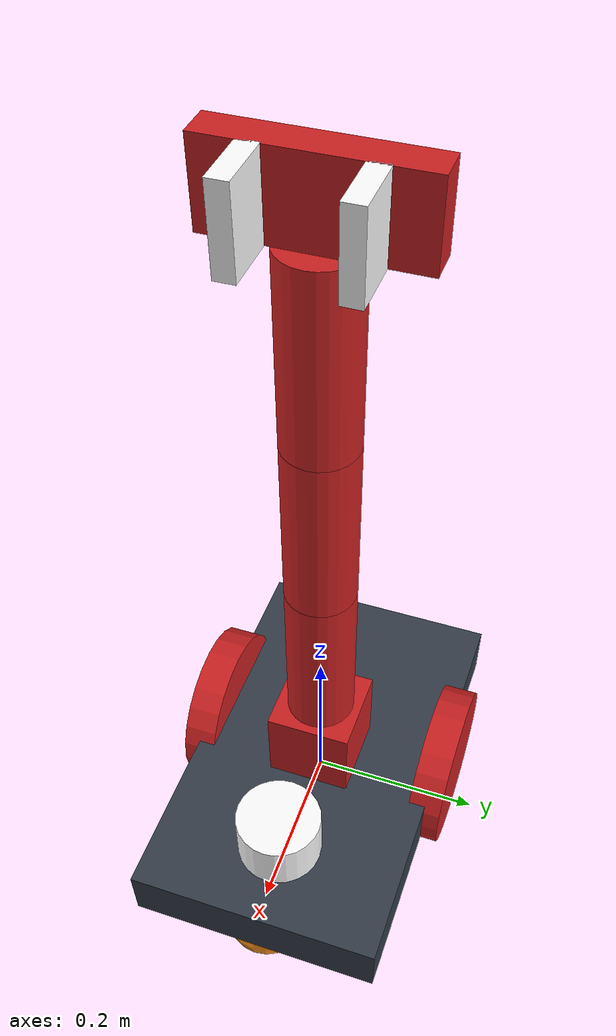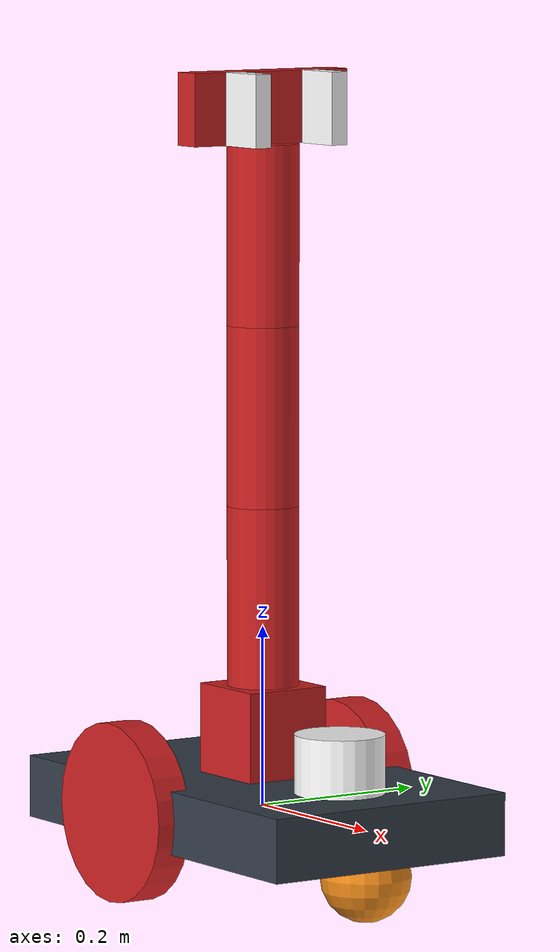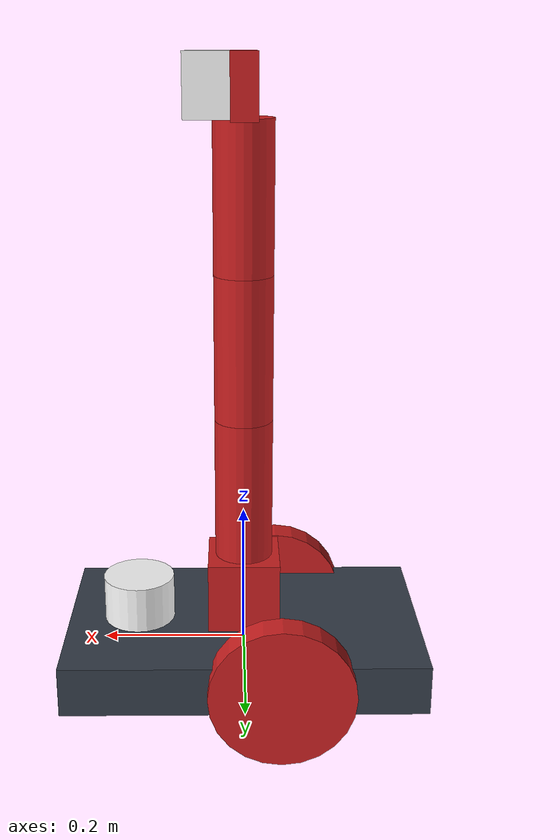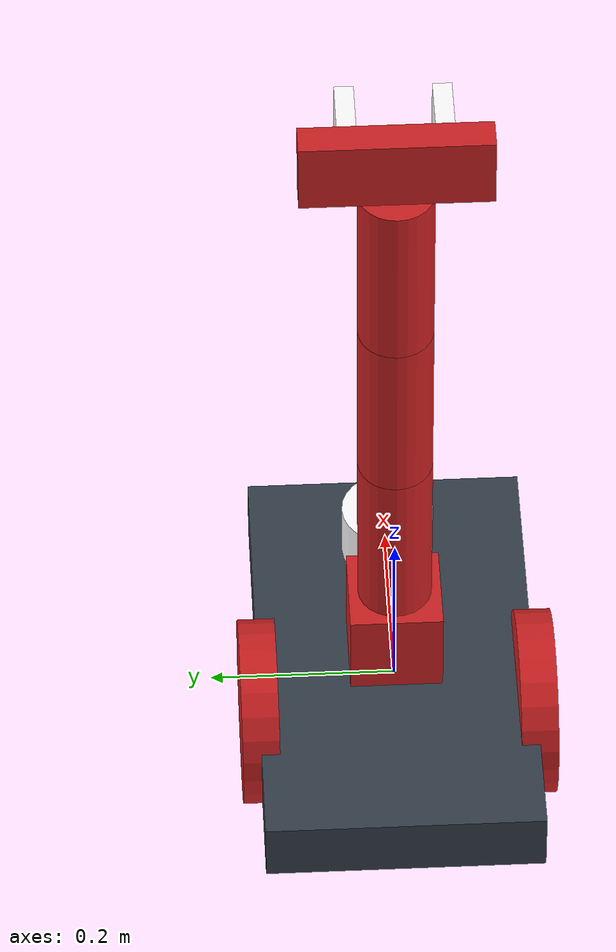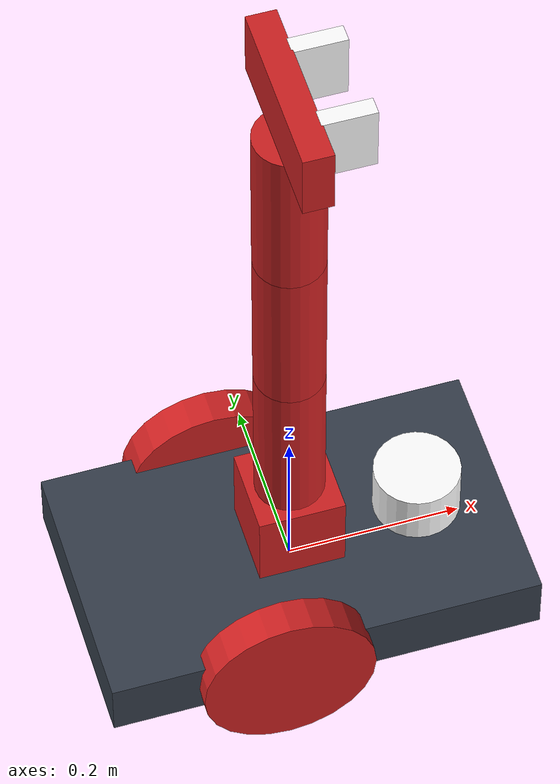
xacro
<?xml version="1.0" ?>
<robot name="robot" xmlns:xacro="http://www.ros.org/wiki/xacro">

<!-- import -->
<xacro:include filename="macros.xacro"/>
<xacro:include filename="params.xacro"/>
<xacro:include filename="materials.xacro"/>
<xacro:include filename="gazebo.gazebo"/>

<!-- dummy link (model root) -->
<!-- see this post :
	https://answers.ros.org/question/192817/error-msg-the-root-link_base-has-an-inertia-specified-in-the-urdf-but-kdl/
	-->

<!-- robot chassis -->
<xacro:include filename="chassis.xacro"></xacro:include>

<!-- robot manipulator -->
<xacro:include filename="arm.xacro"></xacro:include>
<joint name="arm_base_to_base" type="revolute">
	<parent link="base_link"/>
	<child  link="arm_base_link"/>
	<axis xyz="0 0 1" />
	<limit effort="1000.0" lower="-1.8" upper="1.8" velocity="5"/>
	<!-- origin : 0.5*(chassis height) + 0.5*(arm base link height) -->
	<origin xyz="0 0 0.085" rpy="0 0 0"/>
</joint>

<xacro:include filename="transmission.xacro"/>

</robot>

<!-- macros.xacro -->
<robot name="robot" xmlns:xacro="http://www.ros.org/wiki/xacro">

<!-- Inertia Matrix of the cilinder -->
<xacro:macro name="cylinder_inertia" params="mass r l">
	<inertia
		ixx="${mass*(3*r*r+l*l)/12}" iyy="${mass*(3*r*r+l*l)/12}" izz="${mass*(r*r)/2}"
		ixy = "0" ixz = "0" iyz = "0" />
</xacro:macro>
<!-- Inertia Matrix of the cilinder -->

<!-- link of the wheel of the chassis (use this alongside with joint_wheel) -->
<xacro:macro name="link_wheel" params="name">
	<link name="${name}">
		<origin
			xyz="0 0 0"
			rpy="0 0 0"/>

		<inertial>
			<mass value="0.2"/>

			<origin
				rpy="0 1.5707 1.5707"
				xyz="0 0 0"/>

			<inertia
				ixx="0.000526666666667" iyy="0.000526666666667" izz="0.001"
				ixy="0" ixz="0" iyz="0"/>
		</inertial>

		<collision name="link_right_wheel_collision">
			<origin
				rpy="0 1.5707 1.5707"
				xyz="0 0 0"/>

			<geometry>
				<cylinder length="0.04" radius="0.1"/>
			</geometry>
		</collision>

		<visual name="${name}_visual">
			<origin
				rpy="0 1.5707 1.5707"
				xyz="0 0 0"/>

			<geometry>
				<cylinder length="0.04" radius="0.1"/>
			</geometry>
		</visual>
	</link>
</xacro:macro>
<!-- link of the wheel of the chassis (use this alongside with joint_wheel) -->

<!-- joint of the wheel on the chassis -->
<xacro:macro name="joint_wheel" params="name child parent xx yy zz">
	<joint name="${name}" type="continuous">
		<parent link="${parent}"/>
		<child link="${child}"/>

		<origin
			rpy="0 0 0"
			xyz="${xx} ${yy} ${zz}"/>

        <axis
			rpy="0 0 0"
			xyz="0 1 0"/>

        <limit effort="10000" velocity="1000"/>
        <joint_properties damping="1.0" friction="1.0"/>
	</joint>
</xacro:macro>
<!-- joint of the wheel on the chassis -->

</robot>

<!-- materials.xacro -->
<robot name="robot" xmlns:xacro="https://www.ros.org/wiki/xacro" >

  <material name="black">
    <color rgba="0.0 0.0 0.0 1.0"/>
  </material>
  <material name="blue">
    <color rgba="0.203125 0.23828125 0.28515625 1.0"/>
  </material>
  <material name="green">
    <color rgba="0.0 0.8 0.0 1.0"/>
  </material>
  <material name="grey">
    <color rgba="0.2 0.2 0.2 1.0"/>
  </material>
  <material name="orange">
    <color rgba="1.0 0.423529411765 0.0392156862745 1.0"/>
  </material>
  <material name="brown">
    <color rgba="0.870588235294 0.811764705882 0.764705882353 1.0"/>
  </material>
  <material name="red">
    <color rgba="0.80078125 0.12890625 0.1328125 1.0"/>
  </material>
  <material name="white">
    <color rgba="1.0 1.0 1.0 1.0"/>
  </material>

</robot>

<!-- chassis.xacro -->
<robot name="robot" xmlns:xacro="http://www.ros.org/wiki/xacro">

<!-- chassis and front caster wheel -->
<link name="base_link">

	<pose>0 0 0.1 0 0 0</pose>

	<inertial>
		<mass
			value="5" />

		<origin
			rpy="0 0 0"
			xyz="0 0 0"/>

		<inertia
			ixx="0.0395416666667" iyy="0.106208333333" izz="0.106208333333"
			ixy="0" ixz="0" iyz="0" />
	</inertial>

    <!-- collision and visual chassis -->
	<collision name="collision_chassis">
		<geometry>
			<box size="0.5 0.3 0.07"/>
		</geometry>
	</collision>

    <visual>
		<origin rpy="0 0 0" xyz="0 0 0"/>
		<geometry>
			<box size="0.5 0.3 0.07"/>
		</geometry>
		<material name="blue"/>
	</visual>
	<!-- collision and visual chassis -->

    <!-- collision, physics and visual of the front caster wheel -->
	<collision name="caster_front_collision">
		<origin
			rpy=" 0 0 0"
			xyz="0.35 0 -0.05"/>
		<geometry>
			<sphere radius="0.05"/>
		</geometry>
		<surface>
			<friction>
				<ode>
					<mu>0</mu>
					<mu2>0</mu2>
					<slip1>1.0</slip1>
					<slip2>1.0</slip2>
				</ode>
			</friction>
		</surface>
	</collision>

	<visual name="caster_front_visual">
		<origin
			rpy=" 0 0 0"
			xyz="0.2 0 -0.05"/>
		<geometry>
			<sphere radius="0.05"/>
		</geometry>
	</visual>
	<!-- collision, physics and visual of the front caster wheel -->

</link>
<!-- chassis and front caster wheel -->

<!-- place for laser sensors -->
<joint name="joint_laser" type="fixed">
	<parent link="base_link"/>
	<child link="laser"/>
	<origin xyz="0.15 0 0.05" rpy="0 0 0"/>
</joint>

<link name="laser">
	<inertial>
		<origin xyz="0 0 0" rpy="0 0 0" />
		<mass value="1" />
		<xacro:cylinder_inertia mass="1" r="0.05" l="0.1" />
	</inertial>

	<visual>
		<origin xyz="0 0 0" rpy="0 0 0" />
		<geometry>
			<cylinder radius="0.05" length="0.1"/>
		</geometry>
		<material name="white" />
	</visual>

	<collision>
		<origin xyz="0 0 0" rpy="0 0 0"/>
		<geometry>
			<cylinder radius="0.05" length="0.1"/>
		</geometry>
	</collision>
</link>
<!-- place for laser sensors -->

<!-- Wheels -->
<link name="link_right_wheel">
	<inertial>
		<mass value="0.2"/>
		<origin rpy="0 1.5707 1.5707" xyz="0 0 0"/>
		<inertia ixx="0.000526666666667" ixy="0" ixz="0" iyy="0.000526666666667" iyz="0" izz="0.001"/>
	</inertial>
	<collision name="link_right_wheel_collision">
		<origin rpy="0 1.5707 1.5707" xyz="0 0 0"/>
		<geometry>
			<cylinder length="0.04" radius="0.1"/>
		</geometry>
	</collision>
	<visual name="link_right_wheel_visual">
		<origin rpy="0 1.5707 1.5707" xyz="0 0 0"/>
		<geometry>
			<cylinder length="0.04" radius="0.1"/>
		</geometry>
		<material name="red"/>
	</visual>
</link>
<link name="link_left_wheel">
	<inertial>
		<mass value="0.2"/>
		<origin rpy="0 1.5707 1.5707" xyz="0 0 0"/>
		<inertia ixx="0.000526666666667" ixy="0" ixz="0" iyy="0.000526666666667" iyz="0" izz="0.001"/>
	</inertial>
	<collision name="link_left_wheel_collision">
		<origin rpy="0 1.5707 1.5707" xyz="0 0 0"/>
		<geometry>
			<cylinder length="0.04" radius="0.1"/>
		</geometry>
	</collision>
	<visual name="link_left_wheel_visual">
		<origin rpy="0 1.5707 1.5707" xyz="0 0 0"/>
		<geometry>
			<cylinder length="0.04" radius="0.1"/>
		</geometry>
		<material name="red"/>
	</visual>
</link>
<joint name="joint_right_wheel" type="continuous">
	<origin rpy="0 0 0" xyz="-0.05 0.15 0"/>
	<child link="link_right_wheel"/>
	<parent link="base_link"/>
	<axis rpy="0 0 0" xyz="0 1 0"/>
	<limit effort="10000" velocity="1000"/>
	<joint_properties damping="1.0" friction="1.0"/>
</joint>
<joint name="joint_left_wheel" type="continuous">
	<origin rpy="0 0 0" xyz="-0.05 -0.15 0"/>
	<child link="link_left_wheel"/>
	<parent link="base_link"/>
	<axis rpy="0 0 0" xyz="0 1 0"/>
	<limit effort="10000" velocity="1000"/>
	<joint_properties damping="1.0" friction="1.0"/>
</joint>
<!-- Wheels -->

</robot>

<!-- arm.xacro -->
<robot name="robot" xmlns:xacro="http://www.ros.org/wiki/xacro">

<xacro:property name="arm_01_len" value="0.2" />
<xacro:property name="arm_01_mass" value="0.025" />
<xacro:property name="arm_02_len" value="0.2" />
<xacro:property name="arm_02_mass" value="0.025" />
<xacro:property name="arm_03_len" value="0.2" />
<xacro:property name="arm_03_mass" value="0.025" />
<xacro:property name="arm_04_len" value="0.25" />
<xacro:property name="arm_04_mass" value="0.025" />
<xacro:property name="offset" value="0" />

<!-- base link of the manipulator -->
<link name="arm_base_link">
	<origin
		xyz="0 0 0"
		rpy="0 0 0" />

	<inertial>
		<mass value="0.1"/>
  		<origin xyz="0 0 0" rpy="0 0 0" />
  		<inertia
			ixx="0.0000416666667" iyy="0.0000416666667" izz="0.0000416666667"
			iyz="0" ixy="0" ixz="0" />
	</inertial>

  	<collision>
		<origin xyz="0 0 0" rpy="0 0 0"/>
		<geometry>
			<box size="0.1 0.1 0.1"/>
		</geometry>
  	</collision>

  	<visual>
		<origin xyz="0 0 0" rpy="0 0 0"/>
		<geometry>
			<box size="0.1 0.1 0.1"/>
		</geometry>
		<material name="red" />
  	</visual>
</link>
<!-- base link of the manipulator -->

<!-- first link of the manipulator -->
<joint name="arm_joint_01" type="revolute">
	<parent link="arm_base_link"/>
	<child link="arm_link_01"/>
	<origin rpy="0 0 0" xyz="0 0 ${0.05 + offset}"/>

	<axis xyz="0 0 1"/>
	<limit effort="1000000.0" lower="-3.12" upper="3.139" velocity="5"/>
</joint>

<link name="arm_link_01">
	<origin
		xyz="0 0 0"
		rpy="0 0 0" />

	<inertial>
		<origin xyz="0 0 ${arm_01_len/2}" rpy="0 0 0" />
		<mass value="${arm_01_mass}"/>
		<xacro:cylinder_inertia mass="${arm_01_mass}" r="0.04" l="${arm_01_len}" />
	</inertial>

	<collision>
		<origin xyz="0 0 ${arm_01_len/2}" rpy="0 0 0"/>
		<geometry>
			<cylinder radius="0.04" length="${arm_01_len}"/>
		</geometry>
	</collision>

	<visual>
		<origin xyz="0 0 ${arm_01_len/2}" rpy="0 0 0"/>
		<geometry>
			<cylinder radius="0.04" length="${arm_01_len}"/>
		</geometry>
		<material name="red" />
	</visual>
</link>
<!-- first link of the manipulator -->

<!-- second link of the manipulator -->
<joint name="arm_joint_02" type="revolute">
	<parent link="arm_link_01"/>
	<child link="arm_link_02"/>
	<origin rpy="0 0 0" xyz="0 0 ${arm_01_len + offset}"/>
	<axis xyz="0 1 0"/>
	<limit effort="1000000.0" lower="-1.8" upper="1.8" velocity="5"/>
</joint>

<link name="arm_link_02">
	<origin
		xyz="0 0 0"
		rpy="0 0 0" />

	<inertial>
		<origin xyz="0 0 ${arm_02_len/2}" rpy="0 0 0" />
		<mass value="${arm_02_mass}"/>
		<xacro:cylinder_inertia mass="${arm_02_mass}" r="0.04" l="${arm_02_len}" />
	</inertial>

	<collision>
		<origin xyz="0 0 ${arm_02_len/2}" rpy="0 0 0"/>
		<geometry>
			<cylinder radius="0.04" length="${arm_02_len}"/>
		</geometry>
	</collision>

	<visual>
		<origin xyz="0 0 ${arm_02_len/2}" rpy="0 0 0"/>
		<geometry>
			<cylinder radius="0.04" length="${arm_02_len}"/>
		</geometry>
		<material name="red" />
	</visual>
</link>
<!-- second link of the manipulator -->

<!-- third link of the manipulator -->
<joint name="arm_joint_03" type="revolute">
	<parent link="arm_link_02"/>
	<child link="arm_link_03"/>
	<origin rpy="0 0 0" xyz="0 0 ${arm_02_len + offset}"/>
	<axis xyz="0 1 0"/>
	<limit effort="1000000.0" lower="-1.8" upper="1.8" velocity="5"/>
</joint>

<link name="arm_link_03">
	<origin
		xyz="0 0 0"
		rpy="0 0 0" />

	<inertial>
		<origin xyz="0 0 ${arm_03_len/2}" rpy="0 0 0" />
		<mass value="${arm_03_mass}"/>
		<xacro:cylinder_inertia mass="${arm_03_mass}" r="0.04" l="${arm_03_len}" />
	</inertial>

	<collision>
		<origin xyz="0 0 ${arm_03_len/2}" rpy="0 0 0"/>
		<geometry>
			<cylinder radius="0.04" length="${arm_03_len}"/>
		</geometry>
	</collision>

	<visual>
		<origin xyz="0 0 ${arm_03_len/2}" rpy="0 0 0"/>
		<geometry>
			<cylinder radius="0.04" length="${arm_03_len}"/>
		</geometry>
		<material name="red" />
	</visual>
</link>
<!-- third link of the manipulator -->

<!-- last link of the manipulator, base gripper -->
<joint name="arm_joint_04" type="revolute">
	<parent link="arm_link_03"/>
	<child link="cluedo_link"/>
	<origin rpy="0 0 0" xyz="0 0 ${arm_03_len + offset}"/>
	<axis xyz="0 1 0"/>
	<limit effort="10000000.0" lower="-1.8" upper="1.8" velocity="5"/>
</joint>

<link name="cluedo_link">
	<origin
		xyz="0 0 0"
		rpy="0 0 0" />

	<inertial>
		<origin xyz="0 0 0.04" rpy="0 0 0" />
		<mass value="${arm_04_mass}"/>
		<inertia
			ixx="0.000010279" iyy="0.000010279" izz="0.000007225"
			ixy="0" ixz="0" iyz="0"/>
	</inertial>

	<collision>
		<origin xyz="0 0 0.04" rpy="0 0 0"/>
		<geometry>
			<box size="0.034 0.2 0.08"/>
		</geometry>
	</collision>

	<visual>
		<origin xyz="0 0 0.04" rpy="0 0 0"/>
		<geometry>
			<box size="0.034 0.2 0.08"/>
		</geometry>
		<material name="red" />
	</visual>
</link>
-->
<!-- last link of the manipulator, base gripper -->

<!-- right gripper -->
<joint name="right_grip_joint" type="prismatic">
	<parent link="cluedo_link"/>
	<child link="right_grip_link"/>
	<origin rpy="0 0 0" xyz="${0.015 + 0.03} 0.05 0.04"/>
	<axis xyz="0 1 0"/>
	<limit effort="1000000.0" lower="-0.04" upper="0.035" velocity="6.5"/>
</joint>

<link name="right_grip_link">
	<origin
		xyz="0 0 0"
		rpy="0 0 0" />

	<inertial>
		<mass value="0.01"/>
		<origin xyz="0 0 0" rpy="0 0 0" />
		<inertia ixx="0.000010279" ixy="0" ixz="0" iyy="0.000010279" iyz="0" izz="0.000007225"/>
	</inertial>

	<collision>
		<origin rpy="0 0 0" xyz="0 0 0"/>
		<geometry>
			<box size="0.06 0.02 0.08"/>
		</geometry>
	</collision>

  	<visual>
		<origin rpy="0 0 0" xyz="0 0 0"/>
		<geometry>
			<box size="0.06 0.02 0.08"/>
		</geometry>
		<material name="white" />
  	</visual>
</link>
<!-- right gripper -->

<!-- left gripper -->
<joint name="left_grip_joint" type="prismatic">
	<parent link="cluedo_link"/>
	<child link="left_grip_link"/>
	<origin rpy="0 0 0" xyz="${0.015 + 0.03} -0.05 0.04"/>
	<axis xyz="0 1 0"/>
	<limit effort="1000000.0" upper="0.04" lower="-0.035" velocity="6.5"/>
</joint>

<link name="left_grip_link">
	<origin
		xyz="0 0 0"
		rpy="0 0 0" />

  	<inertial>
		<mass value="0.01"/>
		<origin xyz="0 0 0" rpy="0 0 0" />
		<inertia ixx="0.000010279" ixy="0" ixz="0" iyy="0.000010279" iyz="0" izz="0.000007225"/>
  	</inertial>

  	<collision>
		<origin rpy="0 0 0" xyz="0 0 0"/>
		<geometry>
			<box size="0.06 0.02 0.08"/>
		</geometry>
  	</collision>

  	<visual>
		<origin rpy="0 0 0" xyz="0 0 0"/>
		<geometry>
			<box size="0.06 0.02 0.08"/>
		</geometry>
		<material name="white" />
  	</visual>
</link>
<!-- left gripper -->

</robot>
